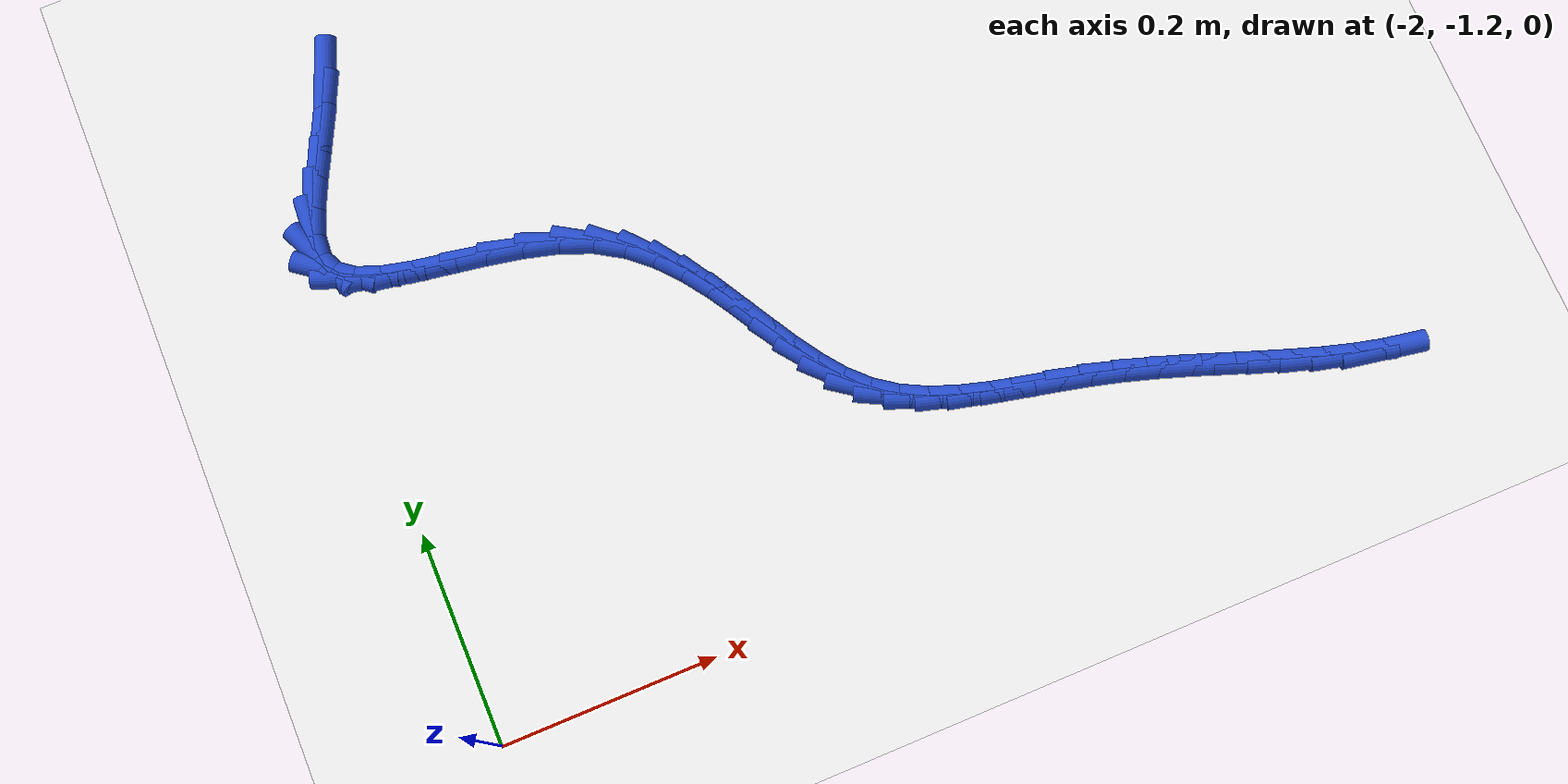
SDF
<sdf version="1.6">
 <world name="default">
  <model name="ground_plane">
   <static>1</static>
   <link name="link">
    <collision name="collision">
     <geometry><plane><normal>0 0 1</normal><size>100 100</size></plane></geometry>
     <surface><friction><ode><mu>100</mu><mu2>50</mu2></ode></friction></surface>
    </collision>
    <visual name="visual">
     <cast_shadows>0</cast_shadows>
     <geometry><plane><normal>0 0 1</normal><size>100 100</size></plane></geometry>
     <material>
      <script><uri>file://media/materials/scripts/gazebo.material</uri><name>Gazebo/WhiteGlow</name></script>
     </material>
    </visual>
   </link>
  </model>
  <model name="line">
   <link name="link_146">
    <pose>-1.9361216679746918 -0.5666540442278146 0.01 0 1.57 1.2114440467420349</pose>
    <collision name="collision">
     <geometry><cylinder><radius>0.01</radius><length>0.08</length></cylinder></geometry>
    </collision>
    <visual name="visual">
     <material>
      <script><name>Gazebo/Blue</name><uri>file://media/materials/scripts/gazebo.material</uri></script>
     </material>
     <geometry><cylinder><radius>0.01</radius><length>0.08</length></cylinder></geometry>
    </visual>
   </link>
   <link name="link_147">
    <pose>-1.9475929601189963 -0.5971901245693692 0.01 0 1.57 1.1416932664658817</pose>
    <collision name="collision">
     <geometry><cylinder><radius>0.01</radius><length>0.08</length></cylinder></geometry>
    </collision>
    <visual name="visual">
     <material>
      <script><name>Gazebo/Blue</name><uri>file://media/materials/scripts/gazebo.material</uri></script>
     </material>
     <geometry><cylinder><radius>0.01</radius><length>0.08</length></cylinder></geometry>
    </visual>
   </link>
   <link name="link_148">
    <pose>-1.961482160498042 -0.6275466521733348 0.01 0 1.57 1.1223943391381674</pose>
    <collision name="collision">
     <geometry><cylinder><radius>0.01</radius><length>0.08</length></cylinder></geometry>
    </collision>
    <visual name="visual">
     <material>
      <script><name>Gazebo/Blue</name><uri>file://media/materials/scripts/gazebo.material</uri></script>
     </material>
     <geometry><cylinder><radius>0.01</radius><length>0.08</length></cylinder></geometry>
    </visual>
   </link>
   <link name="link_149">
    <pose>-1.9755715893800514 -0.6568333868037595 0.01 0 1.57 1.1548117745401199</pose>
    <collision name="collision">
     <geometry><cylinder><radius>0.01</radius><length>0.08</length></cylinder></geometry>
    </collision>
    <visual name="visual">
     <material>
      <script><name>Gazebo/Blue</name><uri>file://media/materials/scripts/gazebo.material</uri></script>
     </material>
     <geometry><cylinder><radius>0.01</radius><length>0.08</length></cylinder></geometry>
    </visual>
   </link>
   <link name="link_150">
    <pose>-1.987643567033245 -0.6841600882246902 0.01 0 1.57 1.2609307041916624</pose>
    <collision name="collision">
     <geometry><cylinder><radius>0.01</radius><length>0.08</length></cylinder></geometry>
    </collision>
    <visual name="visual">
     <material>
      <script><name>Gazebo/Blue</name><uri>file://media/materials/scripts/gazebo.material</uri></script>
     </material>
     <geometry><cylinder><radius>0.01</radius><length>0.08</length></cylinder></geometry>
    </visual>
   </link>
   <link name="link_151">
    <pose>-1.9954804137258435 -0.7086365162001735 0.01 0 1.57 1.504149341264836</pose>
    <collision name="collision">
     <geometry><cylinder><radius>0.01</radius><length>0.08</length></cylinder></geometry>
    </collision>
    <visual name="visual">
     <material>
      <script><name>Gazebo/Blue</name><uri>file://media/materials/scripts/gazebo.material</uri></script>
     </material>
     <geometry><cylinder><radius>0.01</radius><length>0.08</length></cylinder></geometry>
    </visual>
   </link>
   <link name="link_152">
    <pose>-1.9968644497260692 -0.7293724304942577 0.01 0 1.57 -1.1551267285409155</pose>
    <collision name="collision">
     <geometry><cylinder><radius>0.01</radius><length>0.08</length></cylinder></geometry>
    </collision>
    <visual name="visual">
     <material>
      <script><name>Gazebo/Blue</name><uri>file://media/materials/scripts/gazebo.material</uri></script>
     </material>
     <geometry><cylinder><radius>0.01</radius><length>0.08</length></cylinder></geometry>
    </visual>
   </link>
   <link name="link_153">
    <pose>-1.9897229912568204 -0.745551959083911 0.01 0 1.57 -0.649459391590025</pose>
    <collision name="collision">
     <geometry><cylinder><radius>0.01</radius><length>0.08</length></cylinder></geometry>
    </collision>
    <visual name="visual">
     <material>
      <script><name>Gazebo/Blue</name><uri>file://media/materials/scripts/gazebo.material</uri></script>
     </material>
     <geometry><cylinder><radius>0.01</radius><length>0.08</length></cylinder></geometry>
    </visual>
   </link>
   <link name="link_154">
    <pose>-1.9740767734580082 -0.7574329414444714 0.01 0 1.57 -0.3660764155055187</pose>
    <collision name="collision">
     <geometry><cylinder><radius>0.01</radius><length>0.08</length></cylinder></geometry>
    </collision>
    <visual name="visual">
     <material>
      <script><name>Gazebo/Blue</name><uri>file://media/materials/scripts/gazebo.material</uri></script>
     </material>
     <geometry><cylinder><radius>0.01</radius><length>0.08</length></cylinder></geometry>
    </visual>
   </link>
   <link name="link_155">
    <pose>-1.9515199695189331 -0.7660802311237446 0.01 0 1.57 -0.22934458422747497</pose>
    <collision name="collision">
     <geometry><cylinder><radius>0.01</radius><length>0.08</length></cylinder></geometry>
    </collision>
    <visual name="visual">
     <material>
      <script><name>Gazebo/Blue</name><uri>file://media/materials/scripts/gazebo.material</uri></script>
     </material>
     <geometry><cylinder><radius>0.01</radius><length>0.08</length></cylinder></geometry>
    </visual>
   </link>
   <link name="link_156">
    <pose>-1.9236850872180928 -0.7725783434242253 0.01 0 1.57 -0.17091369462632983</pose>
    <collision name="collision">
     <geometry><cylinder><radius>0.01</radius><length>0.08</length></cylinder></geometry>
    </collision>
    <visual name="visual">
     <material>
      <script><name>Gazebo/Blue</name><uri>file://media/materials/scripts/gazebo.material</uri></script>
     </material>
     <geometry><cylinder><radius>0.01</radius><length>0.08</length></cylinder></geometry>
    </visual>
   </link>
   <link name="link_157">
    <pose>-1.8922046343339851 -0.7780117936484078 0.01 0 1.57 -0.1614004342089401</pose>
    <collision name="collision">
     <geometry><cylinder><radius>0.01</radius><length>0.08</length></cylinder></geometry>
    </collision>
    <visual name="visual">
     <material>
      <script><name>Gazebo/Blue</name><uri>file://media/materials/scripts/gazebo.material</uri></script>
     </material>
     <geometry><cylinder><radius>0.01</radius><length>0.08</length></cylinder></geometry>
    </visual>
   </link>
   <link name="link_158">
    <pose>-1.8587111186451084 -0.7834650970987872 0.01 0 1.57 -0.19122430297678508</pose>
    <collision name="collision">
     <geometry><cylinder><radius>0.01</radius><length>0.08</length></cylinder></geometry>
    </collision>
    <visual name="visual">
     <material>
      <script><name>Gazebo/Blue</name><uri>file://media/materials/scripts/gazebo.material</uri></script>
     </material>
     <geometry><cylinder><radius>0.01</radius><length>0.08</length></cylinder></geometry>
    </visual>
   </link>
   <link name="link_159">
    <pose>-1.8248370479299596 -0.7900227690778577 0.01 0 1.57 -0.2619562740827488</pose>
    <collision name="collision">
     <geometry><cylinder><radius>0.01</radius><length>0.08</length></cylinder></geometry>
    </collision>
    <visual name="visual">
     <material>
      <script><name>Gazebo/Blue</name><uri>file://media/materials/scripts/gazebo.material</uri></script>
     </material>
     <geometry><cylinder><radius>0.01</radius><length>0.08</length></cylinder></geometry>
    </visual>
   </link>
   <link name="link_160">
    <pose>-1.7922149299670376 -0.7987693248881143 0.01 0 1.57 -0.3841179401505831</pose>
    <collision name="collision">
     <geometry><cylinder><radius>0.01</radius><length>0.08</length></cylinder></geometry>
    </collision>
    <visual name="visual">
     <material>
      <script><name>Gazebo/Blue</name><uri>file://media/materials/scripts/gazebo.material</uri></script>
     </material>
     <geometry><cylinder><radius>0.01</radius><length>0.08</length></cylinder></geometry>
    </visual>
   </link>
   <link name="link_161">
    <pose>-1.7624771660687408 -0.8107891950062758 0.01 0 1.57 -0.5570267410930259</pose>
    <collision name="collision">
     <geometry><cylinder><radius>0.01</radius><length>0.08</length></cylinder></geometry>
    </collision>
    <visual name="visual">
     <material>
      <script><name>Gazebo/Blue</name><uri>file://media/materials/scripts/gazebo.material</uri></script>
     </material>
     <geometry><cylinder><radius>0.01</radius><length>0.08</length></cylinder></geometry>
    </visual>
   </link>
   <link name="link_162">
    <pose>-1.7367844707996325 -0.8267909983172851 0.01 0 1.57 -0.7231141443759871</pose>
    <collision name="collision">
     <geometry><cylinder><radius>0.01</radius><length>0.08</length></cylinder></geometry>
    </collision>
    <visual name="visual">
     <material>
      <script><name>Gazebo/Blue</name><uri>file://media/materials/scripts/gazebo.material</uri></script>
     </material>
     <geometry><cylinder><radius>0.01</radius><length>0.08</length></cylinder></geometry>
    </visual>
   </link>
   <link name="link_163">
    <pose>-1.714742919395101 -0.8462447107219081 0.01 0 1.57 -0.8584424071001431</pose>
    <collision name="collision">
     <geometry><cylinder><radius>0.01</radius><length>0.08</length></cylinder></geometry>
    </collision>
    <visual name="visual">
     <material>
      <script><name>Gazebo/Blue</name><uri>file://media/materials/scripts/gazebo.material</uri></script>
     </material>
     <geometry><cylinder><radius>0.01</radius><length>0.08</length></cylinder></geometry>
    </visual>
   </link>
   <link name="link_164">
    <pose>-1.6956387557378265 -0.868365485761978 0.01 0 1.57 -0.9578805398669501</pose>
    <collision name="collision">
     <geometry><cylinder><radius>0.01</radius><length>0.08</length></cylinder></geometry>
    </collision>
    <visual name="visual">
     <material>
      <script><name>Gazebo/Blue</name><uri>file://media/materials/scripts/gazebo.material</uri></script>
     </material>
     <geometry><cylinder><radius>0.01</radius><length>0.08</length></cylinder></geometry>
    </visual>
   </link>
   <link name="link_165">
    <pose>-1.6787582237104888 -0.8923684769793273 0.01 0 1.57 -1.0213323459963803</pose>
    <collision name="collision">
     <geometry><cylinder><radius>0.01</radius><length>0.08</length></cylinder></geometry>
    </collision>
    <visual name="visual">
     <material>
      <script><name>Gazebo/Blue</name><uri>file://media/materials/scripts/gazebo.material</uri></script>
     </material>
     <geometry><cylinder><radius>0.01</radius><length>0.08</length></cylinder></geometry>
    </visual>
   </link>
   <link name="link_166">
    <pose>-1.6633875671957679 -0.9174688379157887 0.01 0 1.57 -1.0500827230335585</pose>
    <collision name="collision">
     <geometry><cylinder><radius>0.01</radius><length>0.08</length></cylinder></geometry>
    </collision>
    <visual name="visual">
     <material>
      <script><name>Gazebo/Blue</name><uri>file://media/materials/scripts/gazebo.material</uri></script>
     </material>
     <geometry><cylinder><radius>0.01</radius><length>0.08</length></cylinder></geometry>
    </visual>
   </link>
   <link name="link_167">
    <pose>-1.6488130300763453 -0.9428817221131952 0.01 0 1.57 -1.0444133837734397</pose>
    <collision name="collision">
     <geometry><cylinder><radius>0.01</radius><length>0.08</length></cylinder></geometry>
    </collision>
    <visual name="visual">
     <material>
      <script><name>Gazebo/Blue</name><uri>file://media/materials/scripts/gazebo.material</uri></script>
     </material>
     <geometry><cylinder><radius>0.01</radius><length>0.08</length></cylinder></geometry>
    </visual>
   </link>
   <link name="link_168">
    <pose>-1.6343208562349 -0.9678222831133793 0.01 0 1.57 -1.0024963629594685</pose>
    <collision name="collision">
     <geometry><cylinder><radius>0.01</radius><length>0.08</length></cylinder></geometry>
    </collision>
    <visual name="visual">
     <material>
      <script><name>Gazebo/Blue</name><uri>file://media/materials/scripts/gazebo.material</uri></script>
     </material>
     <geometry><cylinder><radius>0.01</radius><length>0.08</length></cylinder></geometry>
    </visual>
   </link>
   <link name="link_169">
    <pose>-1.619197289554113 -0.9915056744581736 0.01 0 1.57 -0.9203031621011603</pose>
    <collision name="collision">
     <geometry><cylinder><radius>0.01</radius><length>0.08</length></cylinder></geometry>
    </collision>
    <visual name="visual">
     <material>
      <script><name>Gazebo/Blue</name><uri>file://media/materials/scripts/gazebo.material</uri></script>
     </material>
     <geometry><cylinder><radius>0.01</radius><length>0.08</length></cylinder></geometry>
    </visual>
   </link>
   <link name="link_170">
    <pose>-1.6027285739166643 -1.0131470496894113 0.01 0 1.57 -0.793080807042947</pose>
    <collision name="collision">
     <geometry><cylinder><radius>0.01</radius><length>0.08</length></cylinder></geometry>
    </collision>
    <visual name="visual">
     <material>
      <script><name>Gazebo/Blue</name><uri>file://media/materials/scripts/gazebo.material</uri></script>
     </material>
     <geometry><cylinder><radius>0.01</radius><length>0.08</length></cylinder></geometry>
    </visual>
   </link>
   <link name="link_171">
    <pose>-1.5842009532052337 -1.0319615623489249 0.01 0 1.57 -0.6267826702561214</pose>
    <collision name="collision">
     <geometry><cylinder><radius>0.01</radius><length>0.08</length></cylinder></geometry>
    </collision>
    <visual name="visual">
     <material>
      <script><name>Gazebo/Blue</name><uri>file://media/materials/scripts/gazebo.material</uri></script>
     </material>
     <geometry><cylinder><radius>0.01</radius><length>0.08</length></cylinder></geometry>
    </visual>
   </link>
   <link name="link_172">
    <pose>-1.5630118368169252 -1.047306689834915 0.01 0 1.57 -0.4746280743460675</pose>
    <collision name="collision">
     <geometry><cylinder><radius>0.01</radius><length>0.08</length></cylinder></geometry>
    </collision>
    <visual name="visual">
     <material>
      <script><name>Gazebo/Blue</name><uri>file://media/materials/scripts/gazebo.material</uri></script>
     </material>
     <geometry><cylinder><radius>0.01</radius><length>0.08</length></cylinder></geometry>
    </visual>
   </link>
   <link name="link_173">
    <pose>-1.5393004490861133 -1.059489646189467 0.01 0 1.57 -0.36030669638249546</pose>
    <collision name="collision">
     <geometry><cylinder><radius>0.01</radius><length>0.08</length></cylinder></geometry>
    </collision>
    <visual name="visual">
     <material>
      <script><name>Gazebo/Blue</name><uri>file://media/materials/scripts/gazebo.material</uri></script>
     </material>
     <geometry><cylinder><radius>0.01</radius><length>0.08</length></cylinder></geometry>
    </visual>
   </link>
   <link name="link_174">
    <pose>-1.5135096630862022 -1.0692064032429431 0.01 0 1.57 -0.282057036013653</pose>
    <collision name="collision">
     <geometry><cylinder><radius>0.01</radius><length>0.08</length></cylinder></geometry>
    </collision>
    <visual name="visual">
     <material>
      <script><name>Gazebo/Blue</name><uri>file://media/materials/scripts/gazebo.material</uri></script>
     </material>
     <geometry><cylinder><radius>0.01</radius><length>0.08</length></cylinder></geometry>
    </visual>
   </link>
   <link name="link_175">
    <pose>-1.486083264425443 -1.0771541011329748 0.01 0 1.57 -0.23578961505149082</pose>
    <collision name="collision">
     <geometry><cylinder><radius>0.01</radius><length>0.08</length></cylinder></geometry>
    </collision>
    <visual name="visual">
     <material>
      <script><name>Gazebo/Blue</name><uri>file://media/materials/scripts/gazebo.material</uri></script>
     </material>
     <geometry><cylinder><radius>0.01</radius><length>0.08</length></cylinder></geometry>
    </visual>
   </link>
   <link name="link_176">
    <pose>-1.457465038712087 -1.0840298799971935 0.01 0 1.57 -0.2178628305875758</pose>
    <collision name="collision">
     <geometry><cylinder><radius>0.01</radius><length>0.08</length></cylinder></geometry>
    </collision>
    <visual name="visual">
     <material>
      <script><name>Gazebo/Blue</name><uri>file://media/materials/scripts/gazebo.material</uri></script>
     </material>
     <geometry><cylinder><radius>0.01</radius><length>0.08</length></cylinder></geometry>
    </visual>
   </link>
   <link name="link_177">
    <pose>-1.4280987715543845 -1.090530879973231 0.01 0 1.57 -0.22604088908403816</pose>
    <collision name="collision">
     <geometry><cylinder><radius>0.01</radius><length>0.08</length></cylinder></geometry>
    </collision>
    <visual name="visual">
     <material>
      <script><name>Gazebo/Blue</name><uri>file://media/materials/scripts/gazebo.material</uri></script>
     </material>
     <geometry><cylinder><radius>0.01</radius><length>0.08</length></cylinder></geometry>
    </visual>
   </link>
   <link name="link_178">
    <pose>-1.3984282485605875 -1.0973542411987183 0.01 0 1.57 -0.25853492366067565</pose>
    <collision name="collision">
     <geometry><cylinder><radius>0.01</radius><length>0.08</length></cylinder></geometry>
    </collision>
    <visual name="visual">
     <material>
      <script><name>Gazebo/Blue</name><uri>file://media/materials/scripts/gazebo.material</uri></script>
     </material>
     <geometry><cylinder><radius>0.01</radius><length>0.08</length></cylinder></geometry>
    </visual>
   </link>
   <link name="link_179">
    <pose>-1.3688846952820166 -1.1051671341844251 0.01 0 1.57 -0.29651986903632704</pose>
    <collision name="collision">
     <geometry><cylinder><radius>0.01</radius><length>0.08</length></cylinder></geometry>
    </collision>
    <visual name="visual">
     <material>
      <script><name>Gazebo/Blue</name><uri>file://media/materials/scripts/gazebo.material</uri></script>
     </material>
     <geometry><cylinder><radius>0.01</radius><length>0.08</length></cylinder></geometry>
    </visual>
   </link>
   <link name="link_180">
    <pose>-1.3396713046512327 -1.1140926194474687 0.01 0 1.57 -0.32365074322224985</pose>
    <collision name="collision">
     <geometry><cylinder><radius>0.01</radius><length>0.08</length></cylinder></geometry>
    </collision>
    <visual name="visual">
     <material>
      <script><name>Gazebo/Blue</name><uri>file://media/materials/scripts/gazebo.material</uri></script>
     </material>
     <geometry><cylinder><radius>0.01</radius><length>0.08</length></cylinder></geometry>
    </visual>
   </link>
   <link name="link_181">
    <pose>-1.3107926567610237 -1.1237798462216781 0.01 0 1.57 -0.3395176570157905</pose>
    <collision name="collision">
     <geometry><cylinder><radius>0.01</radius><length>0.08</length></cylinder></geometry>
    </collision>
    <visual name="visual">
     <material>
      <script><name>Gazebo/Blue</name><uri>file://media/materials/scripts/gazebo.material</uri></script>
     </material>
     <geometry><cylinder><radius>0.01</radius><length>0.08</length></cylinder></geometry>
    </visual>
   </link>
   <link name="link_182">
    <pose>-1.2822466908188224 -1.133862117884672 0.01 0 1.57 -0.34408316141257445</pose>
    <collision name="collision">
     <geometry><cylinder><radius>0.01</radius><length>0.08</length></cylinder></geometry>
    </collision>
    <visual name="visual">
     <material>
      <script><name>Gazebo/Blue</name><uri>file://media/materials/scripts/gazebo.material</uri></script>
     </material>
     <geometry><cylinder><radius>0.01</radius><length>0.08</length></cylinder></geometry>
    </visual>
   </link>
   <link name="link_183">
    <pose>-1.2540313460320607 -1.1439727378140674 0.01 0 1.57 -0.337054830064222</pose>
    <collision name="collision">
     <geometry><cylinder><radius>0.01</radius><length>0.08</length></cylinder></geometry>
    </collision>
    <visual name="visual">
     <material>
      <script><name>Gazebo/Blue</name><uri>file://media/materials/scripts/gazebo.material</uri></script>
     </material>
     <geometry><cylinder><radius>0.01</radius><length>0.08</length></cylinder></geometry>
    </visual>
   </link>
   <link name="link_184">
    <pose>-1.226144561608172 -1.1537450093874826 0.01 0 1.57 -0.3178419904486601</pose>
    <collision name="collision">
     <geometry><cylinder><radius>0.01</radius><length>0.08</length></cylinder></geometry>
    </collision>
    <visual name="visual">
     <material>
      <script><name>Gazebo/Blue</name><uri>file://media/materials/scripts/gazebo.material</uri></script>
     </material>
     <geometry><cylinder><radius>0.01</radius><length>0.08</length></cylinder></geometry>
    </visual>
   </link>
   <link name="link_185">
    <pose>-1.198584276754589 -1.1628122359825352 0.01 0 1.57 -0.2855425109666881</pose>
    <collision name="collision">
     <geometry><cylinder><radius>0.01</radius><length>0.08</length></cylinder></geometry>
    </collision>
    <visual name="visual">
     <material>
      <script><name>Gazebo/Blue</name><uri>file://media/materials/scripts/gazebo.material</uri></script>
     </material>
     <geometry><cylinder><radius>0.01</radius><length>0.08</length></cylinder></geometry>
    </visual>
   </link>
   <link name="link_186">
    <pose>-1.1713484306787436 -1.1708077209768435 0.01 0 1.57 -0.2389785994938772</pose>
    <collision name="collision">
     <geometry><cylinder><radius>0.01</radius><length>0.08</length></cylinder></geometry>
    </collision>
    <visual name="visual">
     <material>
      <script><name>Gazebo/Blue</name><uri>file://media/materials/scripts/gazebo.material</uri></script>
     </material>
     <geometry><cylinder><radius>0.01</radius><length>0.08</length></cylinder></geometry>
    </visual>
   </link>
   <link name="link_187">
    <pose>-1.1444349625880688 -1.1773647677480243 0.01 0 1.57 -0.1768230974916818</pose>
    <collision name="collision">
     <geometry><cylinder><radius>0.01</radius><length>0.08</length></cylinder></geometry>
    </collision>
    <visual name="visual">
     <material>
      <script><name>Gazebo/Blue</name><uri>file://media/materials/scripts/gazebo.material</uri></script>
     </material>
     <geometry><cylinder><radius>0.01</radius><length>0.08</length></cylinder></geometry>
    </visual>
   </link>
  </model>
 </world>
</sdf>
